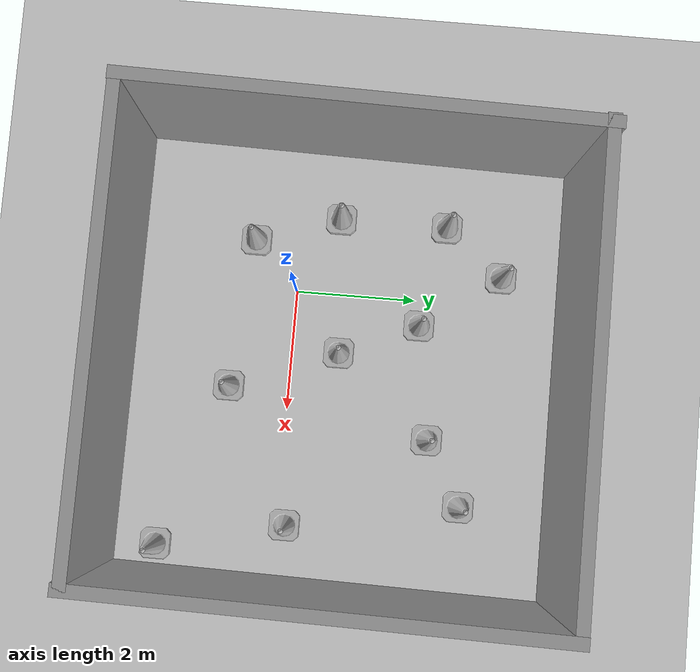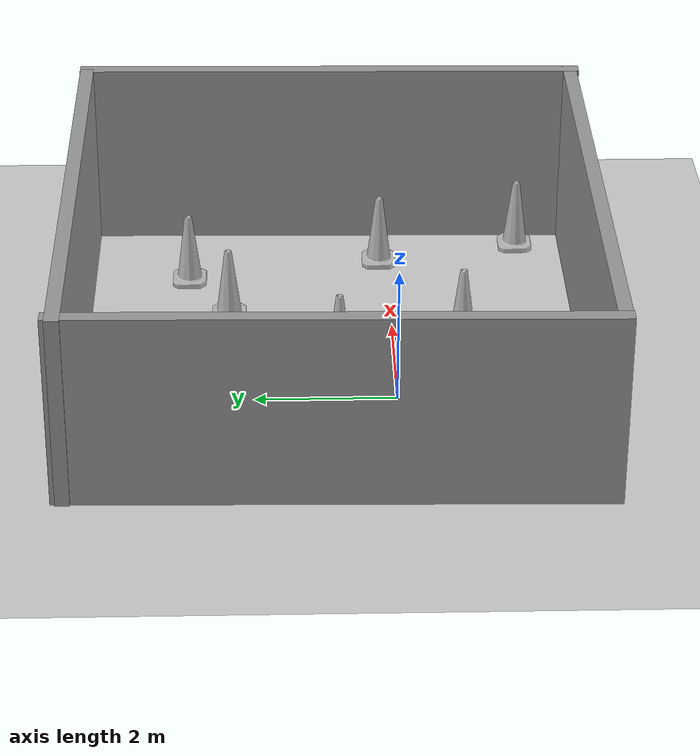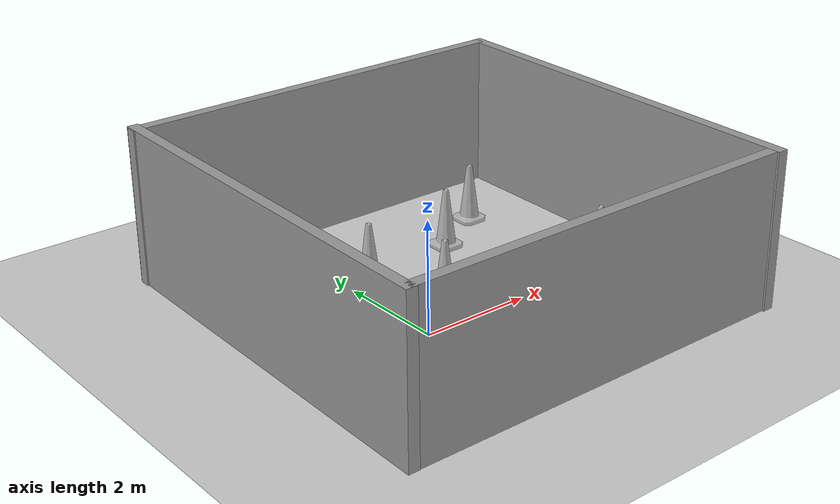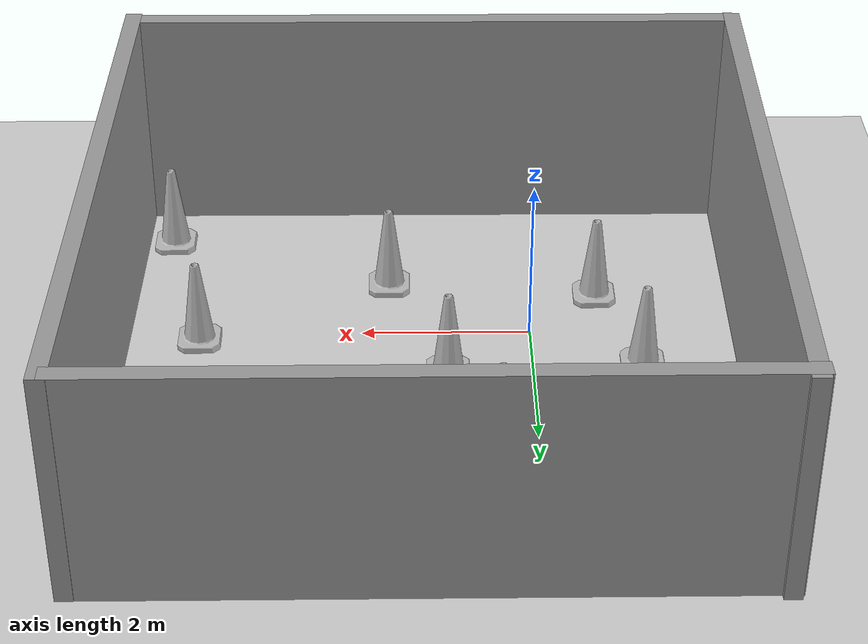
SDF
<sdf version="1.7">
 <world name="default">
  <light name="sun" type="directional">
   <pose>0 0 10 0 -0 0</pose>
   <diffuse>0.8 0.8 0.8 1</diffuse>
   <specular>0.2 0.2 0.2 1</specular>
   <attenuation>
    <range>1000</range>
    <constant>0.9</constant>
    <linear>0.01</linear>
    <quadratic>0.001</quadratic>
   </attenuation>
   <direction>-0.5 0.1 -0.9</direction>
   <spot><inner_angle>0</inner_angle><outer_angle>0</outer_angle><falloff>0</falloff></spot>
  </light>
  <model name="ground_plane">
   <static>1</static>
   <link name="link">
    <collision name="collision">
     <geometry><plane><normal>0 0 1</normal><size>100 100</size></plane></geometry>
     <surface>
      <contact><collide_bitmask>65535</collide_bitmask></contact>
      <friction><ode><mu>100</mu><mu2>50</mu2></ode></friction>
     </surface>
    </collision>
    <visual name="visual">
     <cast_shadows>0</cast_shadows>
     <geometry><plane><normal>0 0 1</normal><size>100 100</size></plane></geometry>
     <material>
      <script><uri>file://media/materials/scripts/gazebo.material</uri><name>Gazebo/Grey</name></script>
     </material>
    </visual>
   </link>
  </model>
  <gravity>0 0 -9.8</gravity>
  <magnetic_field>6e-06 2.3e-05 -4.2e-05</magnetic_field>
  <atmosphere type="adiabatic"/>
  <physics type="ode">
   <max_step_size>0.001</max_step_size>
   <real_time_factor>1</real_time_factor>
   <real_time_update_rate>1000</real_time_update_rate>
  </physics>
  <scene><ambient>0.4 0.4 0.4 1</ambient><background>0.7 0.7 0.7 1</background><shadows>1</shadows></scene>
  <audio><device>default</device></audio>
  <spherical_coordinates>
   <surface_model>EARTH_WGS84</surface_model>
   <latitude_deg>0</latitude_deg>
   <longitude_deg>0</longitude_deg>
   <elevation>0</elevation>
   <heading_deg>0</heading_deg>
  </spherical_coordinates>
  <model name="grey_wall">
   <static>1</static>
   <link name="link">
    <pose>0 0 1.4 0 -0 0</pose>
    <collision name="collision"><geometry><box><size>7.5 0.2 2.8</size></box></geometry></collision>
    <visual name="visual">
     <cast_shadows>0</cast_shadows>
     <geometry><box><size>7.5 0.2 2.8</size></box></geometry>
     <material>
      <script>
       <uri>model://grey_wall/materials/scripts</uri>
       <uri>model://grey_wall/materials/textures</uri>
       <name>vrc/grey_wall</name>
      </script>
     </material>
    </visual>
   </link>
   <pose>1.19596 4.4967 0 0 -0 0</pose>
  </model>
  <model name="grey_wall_clone">
   <static>1</static>
   <link name="link">
    <pose>0 0 1.4 0 -0 0</pose>
    <collision name="collision"><geometry><box><size>7.5 0.2 2.8</size></box></geometry></collision>
    <visual name="visual">
     <cast_shadows>0</cast_shadows>
     <geometry><box><size>7.5 0.2 2.8</size></box></geometry>
     <material>
      <script>
       <uri>model://grey_wall/materials/scripts</uri>
       <uri>model://grey_wall/materials/textures</uri>
       <name>vrc/grey_wall</name>
      </script>
     </material>
    </visual>
   </link>
   <pose>-2.49169 0.909252 0 0 -0 1.55324</pose>
  </model>
  <model name="grey_wall_clone_clone">
   <static>1</static>
   <link name="link">
    <pose>0 0 1.4 0 -0 0</pose>
    <collision name="collision"><geometry><box><size>7.5 0.2 2.8</size></box></geometry></collision>
    <visual name="visual">
     <cast_shadows>0</cast_shadows>
     <geometry><box><size>7.5 0.2 2.8</size></box></geometry>
     <material>
      <script>
       <uri>model://grey_wall/materials/scripts</uri>
       <uri>model://grey_wall/materials/textures</uri>
       <name>vrc/grey_wall</name>
      </script>
     </material>
    </visual>
   </link>
   <pose>4.88375 0.851227 0 0 -0 1.55324</pose>
  </model>
  <model name="grey_wall_0_clone">
   <static>1</static>
   <link name="link">
    <pose>0 0 1.4 0 -0 0</pose>
    <collision name="collision"><geometry><box><size>7.5 0.2 2.8</size></box></geometry></collision>
    <visual name="visual">
     <cast_shadows>0</cast_shadows>
     <geometry><box><size>7.5 0.2 2.8</size></box></geometry>
     <material>
      <script>
       <uri>model://grey_wall/materials/scripts</uri>
       <uri>model://grey_wall/materials/textures</uri>
       <name>vrc/grey_wall</name>
      </script>
     </material>
    </visual>
   </link>
   <pose>1.13243 -2.74571 -0 0 0 -0.004409</pose>
  </model>
  <model name="Construction Cone">
   <link name="link">
    <collision name="collision">
     <geometry>
      <mesh><scale>10 10 10</scale><uri>model://construction_cone/meshes/construction_cone.dae</uri></mesh>
     </geometry>
    </collision>
    <visual name="visual">
     <geometry>
      <mesh><scale>10 10 10</scale><uri>model://construction_cone/meshes/construction_cone.dae</uri></mesh>
     </geometry>
    </visual>
    <inertial>
     <inertia><ixx>1</ixx><ixy>0</ixy><ixz>0</ixz><iyy>1</iyy><iyz>0</iyz><izz>1</izz></inertia>
     <mass>1</mass>
    </inertial>
   </link>
   <pose>3.93515 0.123955 -0 0 -0 0</pose>
  </model>
  <model name="Construction Cone_clone">
   <link name="link">
    <collision name="collision">
     <geometry>
      <mesh><scale>10 10 10</scale><uri>model://construction_cone/meshes/construction_cone.dae</uri></mesh>
     </geometry>
    </collision>
    <visual name="visual">
     <geometry>
      <mesh><scale>10 10 10</scale><uri>model://construction_cone/meshes/construction_cone.dae</uri></mesh>
     </geometry>
    </visual>
    <inertial>
     <inertia><ixx>1</ixx><ixy>0</ixy><ixz>0</ixz><iyy>1</iyy><iyz>0</iyz><izz>1</izz></inertia>
     <mass>1</mass>
    </inertial>
   </link>
   <pose>4.40411 -1.98849 -1e-05 -1e-06 0 0</pose>
  </model>
  <model name="Construction Cone_clone_0">
   <link name="link">
    <collision name="collision">
     <geometry>
      <mesh><scale>10 10 10</scale><uri>model://construction_cone/meshes/construction_cone.dae</uri></mesh>
     </geometry>
    </collision>
    <visual name="visual">
     <geometry>
      <mesh><scale>10 10 10</scale><uri>model://construction_cone/meshes/construction_cone.dae</uri></mesh>
     </geometry>
    </visual>
    <inertial>
     <inertia><ixx>1</ixx><ixy>0</ixy><ixz>0</ixz><iyy>1</iyy><iyz>0</iyz><izz>1</izz></inertia>
     <mass>1</mass>
    </inertial>
   </link>
   <pose>1.68602 -1.00609 -6e-06 -4e-06 0 0</pose>
  </model>
  <model name="Construction Cone_clone_1">
   <link name="link">
    <collision name="collision">
     <geometry>
      <mesh><scale>10 10 10</scale><uri>model://construction_cone/meshes/construction_cone.dae</uri></mesh>
     </geometry>
    </collision>
    <visual name="visual">
     <geometry>
      <mesh><scale>10 10 10</scale><uri>model://construction_cone/meshes/construction_cone.dae</uri></mesh>
     </geometry>
    </visual>
    <inertial>
     <inertia><ixx>1</ixx><ixy>0</ixy><ixz>0</ixz><iyy>1</iyy><iyz>0</iyz><izz>1</izz></inertia>
     <mass>1</mass>
    </inertial>
   </link>
   <pose>-0.819643 -0.755466 -0 0 -0 0</pose>
  </model>
  <model name="Construction Cone_clone_2">
   <link name="link">
    <collision name="collision">
     <geometry>
      <mesh><scale>10 10 10</scale><uri>model://construction_cone/meshes/construction_cone.dae</uri></mesh>
     </geometry>
    </collision>
    <visual name="visual">
     <geometry>
      <mesh><scale>10 10 10</scale><uri>model://construction_cone/meshes/construction_cone.dae</uri></mesh>
     </geometry>
    </visual>
    <inertial>
     <inertia><ixx>1</ixx><ixy>0</ixy><ixz>0</ixz><iyy>1</iyy><iyz>0</iyz><izz>1</izz></inertia>
     <mass>1</mass>
    </inertial>
   </link>
   <pose>0.992316 0.791015 0 -0 -0 -0</pose>
  </model>
  <model name="Construction Cone_clone_3">
   <link name="link">
    <collision name="collision">
     <geometry>
      <mesh><scale>10 10 10</scale><uri>model://construction_cone/meshes/construction_cone.dae</uri></mesh>
     </geometry>
    </collision>
    <visual name="visual">
     <geometry>
      <mesh><scale>10 10 10</scale><uri>model://construction_cone/meshes/construction_cone.dae</uri></mesh>
     </geometry>
    </visual>
    <inertial>
     <inertia><ixx>1</ixx><ixy>0</ixy><ixz>0</ixz><iyy>1</iyy><iyz>0</iyz><izz>1</izz></inertia>
     <mass>1</mass>
    </inertial>
   </link>
   <pose>-1.28642 0.657166 -2e-06 -3e-06 -1e-06 -0</pose>
  </model>
  <model name="Construction Cone_clone_4">
   <link name="link">
    <collision name="collision">
     <geometry>
      <mesh><scale>10 10 10</scale><uri>model://construction_cone/meshes/construction_cone.dae</uri></mesh>
     </geometry>
    </collision>
    <visual name="visual">
     <geometry>
      <mesh><scale>10 10 10</scale><uri>model://construction_cone/meshes/construction_cone.dae</uri></mesh>
     </geometry>
    </visual>
    <inertial>
     <inertia><ixx>1</ixx><ixy>0</ixy><ixz>0</ixz><iyy>1</iyy><iyz>0</iyz><izz>1</izz></inertia>
     <mass>1</mass>
    </inertial>
   </link>
   <pose>-1.28312 2.45851 -4e-06 4e-06 -1e-06 0</pose>
  </model>
  <model name="Construction Cone_clone_5">
   <link name="link">
    <collision name="collision">
     <geometry>
      <mesh><scale>10 10 10</scale><uri>model://construction_cone/meshes/construction_cone.dae</uri></mesh>
     </geometry>
    </collision>
    <visual name="visual">
     <geometry>
      <mesh><scale>10 10 10</scale><uri>model://construction_cone/meshes/construction_cone.dae</uri></mesh>
     </geometry>
    </visual>
    <inertial>
     <inertia><ixx>1</ixx><ixy>0</ixy><ixz>0</ixz><iyy>1</iyy><iyz>0</iyz><izz>1</izz></inertia>
     <mass>1</mass>
    </inertial>
   </link>
   <pose>2.33532 2.37982 -0 0 -1e-06 0</pose>
  </model>
  <model name="Construction Cone_clone_5_clone">
   <link name="link">
    <collision name="collision">
     <geometry>
      <mesh><scale>10 10 10</scale><uri>model://construction_cone/meshes/construction_cone.dae</uri></mesh>
     </geometry>
    </collision>
    <visual name="visual">
     <geometry>
      <mesh><scale>10 10 10</scale><uri>model://construction_cone/meshes/construction_cone.dae</uri></mesh>
     </geometry>
    </visual>
    <inertial>
     <inertia><ixx>1</ixx><ixy>0</ixy><ixz>0</ixz><iyy>1</iyy><iyz>0</iyz><izz>1</izz></inertia>
     <mass>1</mass>
    </inertial>
   </link>
   <pose>3.40405 2.98564 -0 0 -1e-06 0</pose>
  </model>
  <model name="Construction Cone_clone_5_clone_0">
   <link name="link">
    <collision name="collision">
     <geometry>
      <mesh><scale>10 10 10</scale><uri>model://construction_cone/meshes/construction_cone.dae</uri></mesh>
     </geometry>
    </collision>
    <visual name="visual">
     <geometry>
      <mesh><scale>10 10 10</scale><uri>model://construction_cone/meshes/construction_cone.dae</uri></mesh>
     </geometry>
    </visual>
    <inertial>
     <inertia><ixx>1</ixx><ixy>0</ixy><ixz>0</ixz><iyy>1</iyy><iyz>0</iyz><izz>1</izz></inertia>
     <mass>1</mass>
    </inertial>
   </link>
   <pose>-0.497968 3.43299 -9e-06 -1e-06 -0 -0</pose>
  </model>
  <model name="Construction Cone_clone_5_clone_1">
   <link name="link">
    <collision name="collision">
     <geometry>
      <mesh><scale>10 10 10</scale><uri>model://construction_cone/meshes/construction_cone.dae</uri></mesh>
     </geometry>
    </collision>
    <visual name="visual">
     <geometry>
      <mesh><scale>10 10 10</scale><uri>model://construction_cone/meshes/construction_cone.dae</uri></mesh>
     </geometry>
    </visual>
    <inertial>
     <inertia><ixx>1</ixx><ixy>0</ixy><ixz>0</ixz><iyy>1</iyy><iyz>0</iyz><izz>1</izz></inertia>
     <mass>1</mass>
    </inertial>
   </link>
   <pose>0.42394 2.10691 -0 0 -0 0</pose>
  </model>
 </world>
</sdf>
